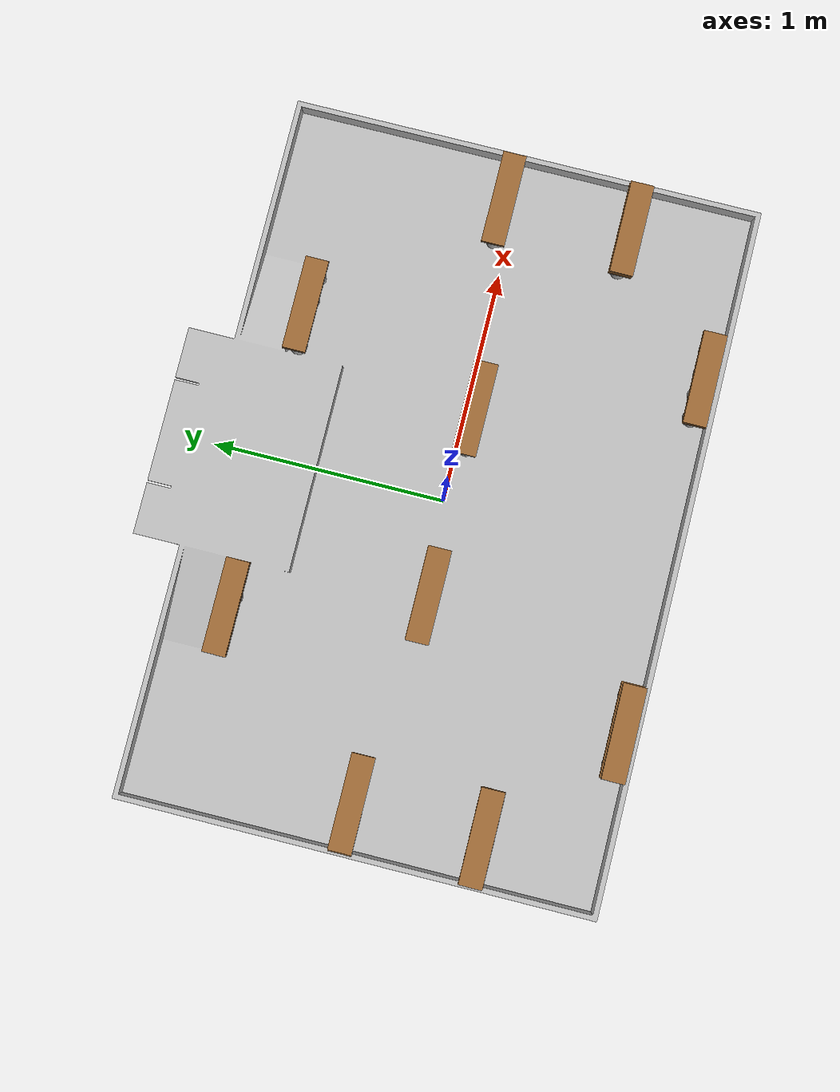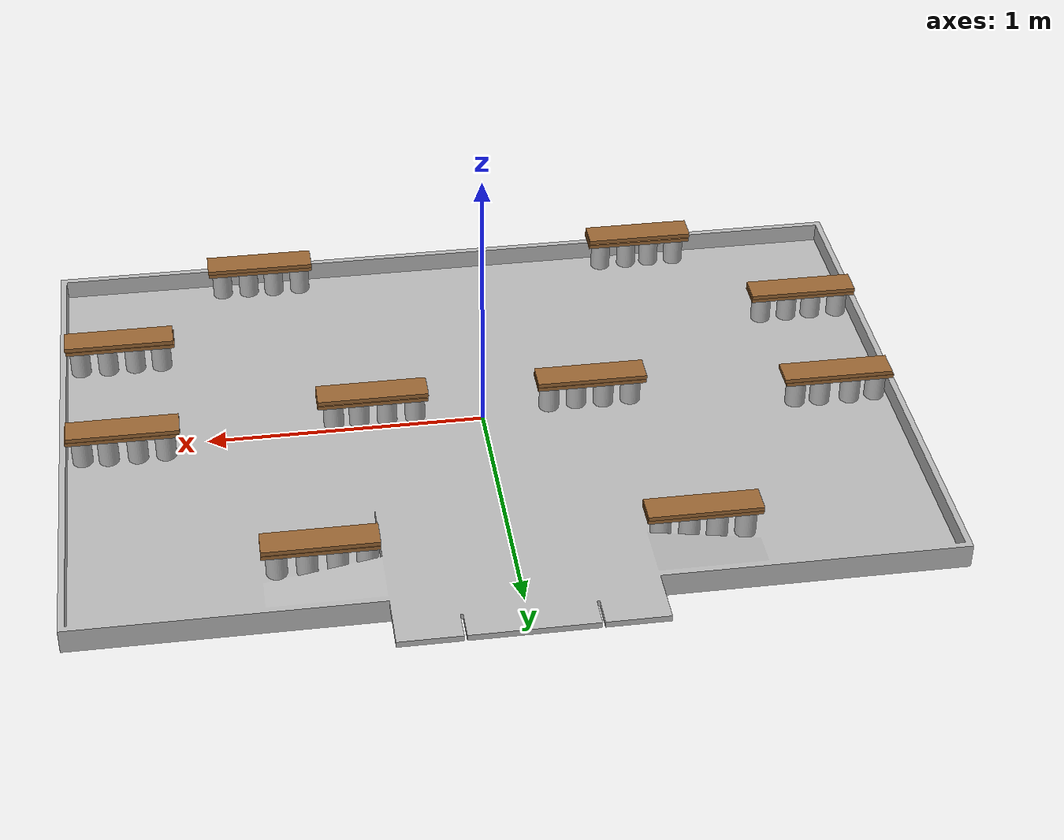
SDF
<sdf version="1.10">
 <world name="default">
  <gravity>0 0 -9.8000000000000007</gravity>
  <magnetic_field>6.0000000000000002e-06 2.3e-05 -4.1999999999999998e-05</magnetic_field>
  <atmosphere type="adiabatic"/>
  <physics type="ode">
   <max_step_size>0.004</max_step_size>
   <real_time_factor>1</real_time_factor>
   <real_time_update_rate>250</real_time_update_rate>
  </physics>
  <scene>
   <ambient>0.400000006 0.400000006 0.400000006 1</ambient>
   <background>0.699999988 0.699999988 0.699999988 1</background>
   <shadows>true</shadows>
  </scene>
  <audio><device>default</device></audio>
  <spherical_coordinates>
   <surface_model>EARTH_WGS84</surface_model>
   <latitude_deg>0</latitude_deg>
   <longitude_deg>0</longitude_deg>
   <elevation>0</elevation>
   <heading_deg>0</heading_deg>
  </spherical_coordinates>
  <plugin name="gz::sim::systems::Physics" filename="gz-sim-physics-system"/>
  <plugin name="gz::sim::systems::Sensors" filename="gz-sim-sensors-system">
   <render_engine>ogre2</render_engine>
  </plugin>
  <plugin name="gz::sim::systems::Imu" filename="gz-sim-imu-system"/>
  <plugin name="gz::sim::systems::UserCommands" filename="gz-sim-user-commands-system"/>
  <plugin name="gz::sim::systems::SceneBroadcaster" filename="gz-sim-scene-broadcaster-system"/>
  <plugin name="gz::sim::systems::MyPlugin" filename="libgz-match-plugin.so"/>
  <include><uri>model://Table2025</uri><name>Table_2024</name></include>
  <include>
   <uri>model://Can</uri>
   <name>Can</name>
   <pose>-0.25068315155170301 -0.039200628891831263 0 0 0 0</pose>
  </include>
  <include>
   <uri>model://Can</uri>
   <name>Can_0</name>
   <pose>-0.35221898728607243 -0.044808617988725208 0 0 0 0</pose>
  </include>
  <include>
   <uri>model://Can</uri>
   <name>Can_1</name>
   <pose>-0.45286431464902649 -0.040053838648059226 0 0 0 0</pose>
  </include>
  <include>
   <uri>model://Can</uri>
   <name>Can_2</name>
   <pose>-0.55375782697724529 -0.043772160476831024 0 0 0 0</pose>
  </include>
  <include>
   <uri>model://Can</uri>
   <name>Can_3</name>
   <pose>-1.452663262827592 0.056330706304445144 0 0 0 0</pose>
  </include>
  <include>
   <uri>model://Can</uri>
   <name>Can_4</name>
   <pose>-1.3571504225813884 0.061815657787472167 0 0 0 0</pose>
  </include>
  <include>
   <uri>model://Can</uri>
   <name>Can_5</name>
   <pose>-1.2446275068744761 0.059799522911209158 0 0 0 0</pose>
  </include>
  <include>
   <uri>model://Can</uri>
   <name>Can_6</name>
   <pose>-1.1523689360883169 0.058553175663850626 0 0 0 0</pose>
  </include>
  <include>
   <uri>model://Can</uri>
   <name>Can_7</name>
   <pose>-0.80212478276114441 0.75885762924626721 0 0 0 0</pose>
  </include>
  <include>
   <uri>model://Can</uri>
   <name>Can_8</name>
   <pose>-0.70267304298050182 0.75971065021176121 0 0 0 0</pose>
  </include>
  <include>
   <uri>model://Can</uri>
   <name>Can_9</name>
   <pose>-0.60636852375048278 0.75455492557296533 0 0 0 0</pose>
  </include>
  <include>
   <uri>model://Can</uri>
   <name>Can_10</name>
   <pose>-0.50370230633076374 0.76158001881923987 0 0 0 0</pose>
  </include>
  <include>
   <uri>model://Can</uri>
   <name>Can_11</name>
   <pose>0.49610452452074644 0.75907115601275676 0 0 0 0</pose>
  </include>
  <include>
   <uri>model://Can</uri>
   <name>Can_12</name>
   <pose>0.59668342499745919 0.76224201638360478 0 0 0 0</pose>
  </include>
  <include>
   <uri>model://Can</uri>
   <name>Can_13</name>
   <pose>0.69986482071552669 0.75731162647751327 0 0 0 0</pose>
  </include>
  <include>
   <uri>model://Can</uri>
   <name>Can_14</name>
   <pose>0.80188884982676423 0.75301006663356729 0 0 0 0</pose>
  </include>
  <include>
   <uri>model://Can</uri>
   <name>Can_15</name>
   <pose>1.4450458324516871 0.052949713359482176 0 0 0 0</pose>
  </include>
  <include>
   <uri>model://Can</uri>
   <name>Can_16</name>
   <pose>1.3525390027044639 0.058819312173554628 0 0 0 0</pose>
  </include>
  <include>
   <uri>model://Can</uri>
   <name>Can_17</name>
   <pose>1.2488765718869237 0.059764268555141331 0 0 0 0</pose>
  </include>
  <include>
   <uri>model://Can</uri>
   <name>Can_18</name>
   <pose>1.1490897807115887 0.056600227747524157 0 0 0 0</pose>
  </include>
  <include>
   <uri>model://Can</uri>
   <name>Can_19</name>
   <pose>1.1491197605580346 -0.49120721236000164 0 0 0 0</pose>
  </include>
  <include>
   <uri>model://Can</uri>
   <name>Can_20</name>
   <pose>1.2474900484085083 -0.48923298716545105 0.0021717050112783909 0 0 0</pose>
  </include>
  <include>
   <uri>model://Can</uri>
   <name>Can_21</name>
   <pose>1.3479782716996356 -0.48853706522059875 0 0 0 0</pose>
  </include>
  <include>
   <uri>model://Can</uri>
   <name>Can_22</name>
   <pose>1.4499048904477614 -0.49165901061792827 0 0 0 0</pose>
  </include>
  <include>
   <uri>model://Can</uri>
   <name>Can_23</name>
   <pose>0.8987447743250403 -0.94181928489068178 0 0 0 0</pose>
  </include>
  <include>
   <uri>model://Can</uri>
   <name>Can_24</name>
   <pose>0.79691656852453963 -0.94097340225728687 0 0 0 0</pose>
  </include>
  <include>
   <uri>model://Can</uri>
   <name>Can_25</name>
   <pose>0.69937529460710279 -0.93653613710692207 0 0 0 0</pose>
  </include>
  <include>
   <uri>model://Can</uri>
   <name>Can_26</name>
   <pose>0.59784548754463329 -0.9386851087594642 0 0 0 0</pose>
  </include>
  <include>
   <uri>model://Can</uri>
   <name>Can_27</name>
   <pose>-0.60496826110007118 -0.9412447738326809 0 0 0 0</pose>
  </include>
  <include>
   <uri>model://Can</uri>
   <name>Can_28</name>
   <pose>-0.70889697603791058 -0.94220421161066492 0 0 0 0</pose>
  </include>
  <include>
   <uri>model://Can</uri>
   <name>Can_29</name>
   <pose>-0.79940165883993275 -0.94363686920665568 0 0 0 0</pose>
  </include>
  <include>
   <uri>model://Can</uri>
   <name>Can_30</name>
   <pose>-0.89911875851700351 -0.9410330648498898 0 0 0 0</pose>
  </include>
  <include>
   <uri>model://Can</uri>
   <name>Can_31</name>
   <pose>-1.1526380797130489 -0.4898348031378511 0 0 0 0</pose>
  </include>
  <include>
   <uri>model://Can</uri>
   <name>Can_32</name>
   <pose>-1.2545731218061229 -0.49088168494842621 0 0 0 0</pose>
  </include>
  <include>
   <uri>model://Can</uri>
   <name>Can_33</name>
   <pose>-1.3497520965771472 -0.49234995014767413 0 0 0 0</pose>
  </include>
  <include>
   <uri>model://Can</uri>
   <name>Can_34</name>
   <pose>-1.4523078807463325 -0.49128988795337009 0 0 0 0</pose>
  </include>
  <include>
   <uri>model://Can</uri>
   <name>Can_35</name>
   <pose>0.24415142529954101 -0.041274378529825864 0 0 0 0</pose>
  </include>
  <include>
   <uri>model://Can</uri>
   <name>Can_36</name>
   <pose>0.3465572448097064 -0.038499409363570922 0 0 0 0</pose>
  </include>
  <include>
   <uri>model://Can</uri>
   <name>Can_37</name>
   <pose>0.44823190867532159 -0.04087312086549863 0 0 0 0</pose>
  </include>
  <include>
   <uri>model://Can</uri>
   <name>Can_38</name>
   <pose>0.54120329621512431 -0.039788836595094412 0 0 0 0</pose>
  </include>
  <include>
   <uri>model://Plank</uri>
   <name>Plank</name>
   <pose>-1.3023999929428101 -0.48573699593544006 0.11691617220640182 0 0 0</pose>
  </include>
  <include>
   <uri>model://Plank</uri>
   <name>Plank_0</name>
   <pose>-0.75034302473068237 -0.93921798467636108 0.12033747136592865 0 0 0</pose>
  </include>
  <include>
   <uri>model://Plank</uri>
   <name>Plank_1</name>
   <pose>-0.40230000019073486 -0.035934299230575562 0.1175709143280983 0 0 0</pose>
  </include>
  <include>
   <uri>model://Plank</uri>
   <name>Plank_2</name>
   <pose>-1.3016999959945679 0.061442900449037552 0.11795897036790848 0 0 0</pose>
  </include>
  <include>
   <uri>model://Plank</uri>
   <name>Plank_3</name>
   <pose>-0.64987397193908691 0.75768899917602539 0.11852224916219711 0 0 0</pose>
  </include>
  <include>
   <uri>model://Plank</uri>
   <name>Plank_4</name>
   <pose>0.65323799848556519 0.75965797901153564 0.11743082851171494 0 0 0</pose>
  </include>
  <include>
   <uri>model://Plank</uri>
   <name>Plank_5</name>
   <pose>1.2977800369262695 0.058632299304008484 0.12052788585424423 0 0 0</pose>
  </include>
  <include>
   <uri>model://Plank</uri>
   <name>Plank_6</name>
   <pose>1.2961200475692749 -0.4930729866027832 0.11855225265026093 0 0 0</pose>
  </include>
  <include>
   <uri>model://Plank</uri>
   <name>Plank_7</name>
   <pose>0.40019199252128601 -0.03542260080575943 0.11728916317224503 0 0 0</pose>
  </include>
  <include>
   <uri>model://Plank</uri>
   <name>Plank_8</name>
   <pose>0.74871701002120972 -0.93932002782821655 0.11880471557378769 0 0 0</pose>
  </include>
  <include>
   <uri>model://Plank</uri>
   <name>Plank_9</name>
   <pose>-0.75388997793197632 -0.94500702619552612 0.13605232536792755 0 0 0</pose>
  </include>
  <include>
   <uri>model://Plank</uri>
   <name>Plank_10</name>
   <pose>-0.4027400016784668 -0.037016831338405609 0.13332000374794006 0 0 0</pose>
  </include>
  <include>
   <uri>model://Plank</uri>
   <name>Plank_11</name>
   <pose>-1.2949600219726562 0.061498101800680161 0.13387396931648254 0 0 0</pose>
  </include>
  <include>
   <uri>model://Plank</uri>
   <name>Plank_12</name>
   <pose>-0.65046900510787964 0.75871902704238892 0.13319449126720428 0 0 0</pose>
  </include>
  <include>
   <uri>model://Plank</uri>
   <name>Plank_13</name>
   <pose>0.65300667285919189 0.75773602724075317 0.13324199616909027 0 0 0</pose>
  </include>
  <include>
   <uri>model://Plank</uri>
   <name>Plank_14</name>
   <pose>1.2940399646759033 0.058428201824426651 0.13636486232280731 0 0 0</pose>
  </include>
  <include>
   <uri>model://Plank</uri>
   <name>Plank_15</name>
   <pose>1.2997900247573853 -0.49562999606132507 0.13413098454475403 0 0 0</pose>
  </include>
  <include>
   <uri>model://Plank</uri>
   <name>Plank_16</name>
   <pose>0.39823400974273682 -0.038625601679086685 0.13363298773765564 0 0 0</pose>
  </include>
  <include>
   <uri>model://Plank</uri>
   <name>Plank_17</name>
   <pose>0.74990999698638916 -0.93815100193023682 0.13425500690937042 0 0 0</pose>
  </include>
  <include>
   <uri>model://Plank</uri>
   <name>Plank_18</name>
   <pose>-1.3017100095748901 -0.48313429951667786 0.13244800269603729 0 0 0</pose>
  </include>
  <light name="sun" type="directional">
   <pose>0 0 10 0 0 0</pose>
   <intensity>1</intensity>
   <direction>-0.5 0.10000000000000001 -0.90000000000000002</direction>
   <diffuse>0.800000012 0.800000012 0.800000012 1</diffuse>
   <specular>0.200000003 0.200000003 0.200000003 1</specular>
   <attenuation>
    <range>1000</range>
    <linear>0.01</linear>
    <constant>0.90000000000000002</constant>
    <quadratic>0.001</quadratic>
   </attenuation>
   <spot><inner_angle>0</inner_angle><outer_angle>0</outer_angle><falloff>0</falloff></spot>
  </light>
 </world>
</sdf>

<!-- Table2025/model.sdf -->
<sdf version='1.7'>
  <model name='Table_2024'>
   	<static>true</static>
    <plugin filename="gz-sim-label-system" name="gz::sim::systems::Label">
        <label>1</label>
    </plugin>
    <link name='link_0'>
			<gravity>0</gravity>
      <inertial>
        <inertia>
          <ixx>0.166667</ixx>
          <ixy>0</ixy>
          <ixz>0</ixz>
          <iyy>0.166667</iyy>
          <iyz>0</iyz>
          <izz>0.166667</izz>
        </inertia>
      </inertial>
      <pose>0 0 0 0 0 0</pose>
      <visual name='visual'>
        <pose>0 0 0 0 -0 0</pose>
        <geometry>
          <mesh>
            <uri>TableMainV3.dae</uri>
            <scale>1 1 1</scale>
          </mesh>
        </geometry>
        <transparency>0</transparency>
        <cast_shadows>1</cast_shadows>
      </visual>
      <collision name='collision'>
        <laser_retro>0</laser_retro>
        <max_contacts>10</max_contacts>
        <pose>0 0 0 0 -0 0</pose>
        <geometry>
          <mesh>
            <uri>TableMainV3.dae</uri>
            <scale>1 1 1</scale>
          </mesh>
        </geometry>
        <surface>
          <friction>
            <ode>
              <mu>1</mu>
              <mu2>1</mu2>
              <fdir1>0 0 0</fdir1>
              <slip1>0</slip1>
              <slip2>0</slip2>
            </ode>
            <torsional>
              <coefficient>1</coefficient>
              <patch_radius>0</patch_radius>
              <surface_radius>0</surface_radius>
              <use_patch_radius>1</use_patch_radius>
              <ode>
                <slip>0</slip>
              </ode>
            </torsional>
          </friction>

          <contact>
            <collide_without_contact>0</collide_without_contact>
            <collide_without_contact_bitmask>1</collide_without_contact_bitmask>
            <collide_bitmask>1</collide_bitmask>
            <ode>
              <soft_cfm>0</soft_cfm>
              <soft_erp>0.2</soft_erp>
              <kp>1e+13</kp>
              <kd>1</kd>
              <max_vel>0.01</max_vel>
              <min_depth>0.01</min_depth>
            </ode>
            <bullet>
              <split_impulse>1</split_impulse>
              <split_impulse_penetration_threshold>-0.01</split_impulse_penetration_threshold>
              <soft_cfm>0</soft_cfm>
              <soft_erp>0.2</soft_erp>
              <kp>1e+13</kp>
              <kd>1</kd>
            </bullet>
          </contact>
        </surface>
      </collision>
    </link>
    <pose>0 0 0 0 0 0</pose>

    <static>0</static>
    <allow_auto_disable>1</allow_auto_disable>
  </model>
</sdf>

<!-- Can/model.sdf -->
<sdf version='1.7'>
  <model name='Can'>
   	<static>false</static>
    <plugin filename="gz-sim-label-system" name="gz::sim::systems::Label">
        <label>11</label>
    </plugin>
    <link name='link_0'>
			<gravity>1</gravity>
      <inertial>
        <pose>0 0 0.02 0 0 0</pose>
        <mass>0.025</mass>
        <inertia>
          <ixx>2.5e-5</ixx>
          <ixy>0</ixy>
          <ixz>0</ixz>
          <iyy>2.5e-5</iyy>
          <iyz>0</iyz>
          <izz>8e-6</izz>
        </inertia>
      </inertial>
      <pose>0 0 0 0 0 0</pose>
      <visual name='visual'>
        <pose>0 0 0 0 -0 0</pose>
        <geometry>
          <mesh>
            <uri>canv2.dae</uri>
            <scale>1.0 1.0 1.0</scale>
          </mesh>
        </geometry>
        <transparency>0</transparency>
        <cast_shadows>1</cast_shadows>
      </visual>

      <collision name='collision'>
        <laser_retro>0</laser_retro>
        <max_contacts>3</max_contacts>
        <pose>0 0 0.0545 0 -0 0</pose>
        <geometry>
          <cylinder>
            <radius>0.0365</radius>
            <length>0.109</length>
          </cylinder>
        </geometry>
        <surface>
          <friction>
            <ode>
              <mu>0.9</mu>
              <mu2>0.9</mu2>
            </ode>
          </friction>

          <contact>
            <ode>
              <soft_cfm>0</soft_cfm>
              <soft_erp>0.2</soft_erp>
              <kp>1e1</kp>
              <kd>1e9</kd>
              <max_vel>0.01</max_vel>
              <min_depth>0.001</min_depth>
            </ode>
          </contact>
        </surface>
      </collision>
    </link>
    <pose>0 0 0 0 0 0</pose>

    <allow_auto_disable>1</allow_auto_disable>
  </model>
</sdf>

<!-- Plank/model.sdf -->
<sdf version='1.7'>
  <model name='Plank'>
   	<static>false</static>
    <allow_auto_disable>true</allow_auto_disable>
    <plugin filename="gz-sim-label-system" name="gz::sim::systems::Label">
        <label>10</label>
    </plugin>
    <link name='link_0'>
			<gravity>1</gravity>
      <inertial>
        <pose>0 0 0.02 0 0 0</pose>
        <mass>0.025</mass>
        <inertia>
          <ixx>2.5e-5</ixx>
          <ixy>0</ixy>
          <ixz>0</ixz>
          <iyy>2.5e-5</iyy>
          <iyz>0</iyz>
          <izz>8e-6</izz>
        </inertia>
      </inertial>
      <pose>0 0 0 0 0 0</pose>
      <visual name='visual'>
        <pose>0 0 0 0 -0 0</pose>
        <geometry>
          <box>
        <size>0.4 0.1 0.015</size>
          </box>
        </geometry>
        <material>
          <ambient>0.6 0.4 0.2 1</ambient>
          <diffuse>0.6 0.4 0.2 1</diffuse>
          <specular>0.1 0.1 0.1 1</specular>
          <emissive>0 0 0 1</emissive>
        </material>
        <transparency>0</transparency>
        <cast_shadows>1</cast_shadows>
      </visual>

      <collision name='collision'>
        <laser_retro>0</laser_retro>
        <max_contacts>5 </max_contacts>
        <pose>0 0 0 0 0 0</pose>
        <geometry>
          <box>
            <size>0.4 0.1 0.015</size>
          </box>
        </geometry>
        <surface>
          <bounce>
            <restitution_coefficient>0.1</restitution_coefficient>
            <threshold>1000000</threshold>
          </bounce>
          <friction>
            <ode>
              <mu>1.0</mu>
              <mu2>1.0</mu2>
            </ode>
          </friction>

          <contact>
            <ode>
              <soft_cfm>0</soft_cfm>
              <soft_erp>0.2</soft_erp>
              <kp>1e1</kp>
              <kd>1</kd>
              <max_vel>0</max_vel>
              <min_depth>0.001</min_depth>
            </ode>
          </contact>
        </surface>
      </collision>
    </link>
    <pose>0 0 0 0 0 0</pose>

    <allow_auto_disable>1</allow_auto_disable>
  </model>
</sdf>
